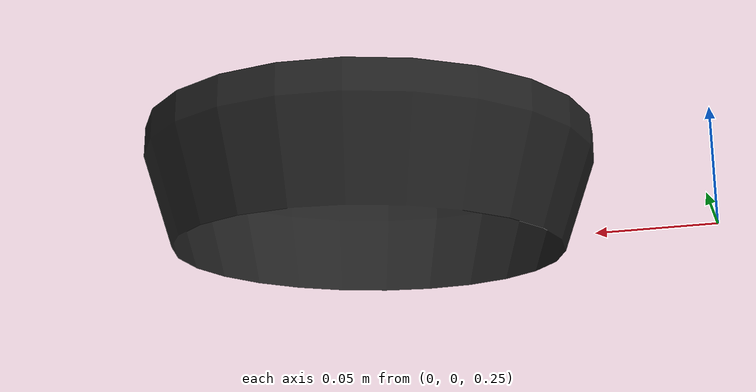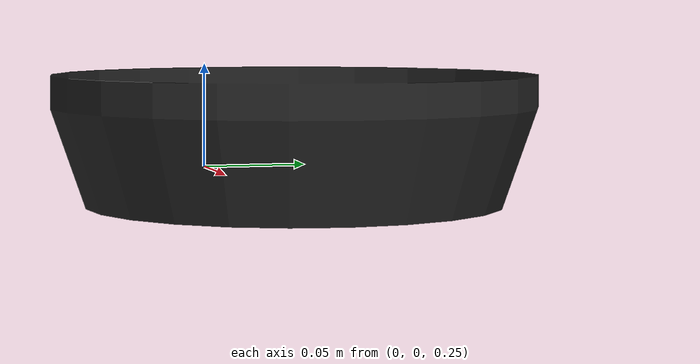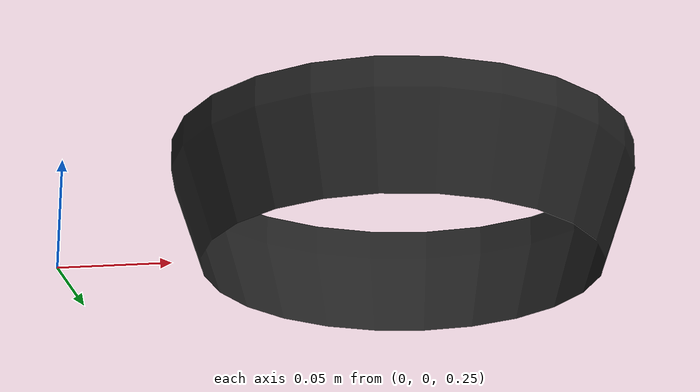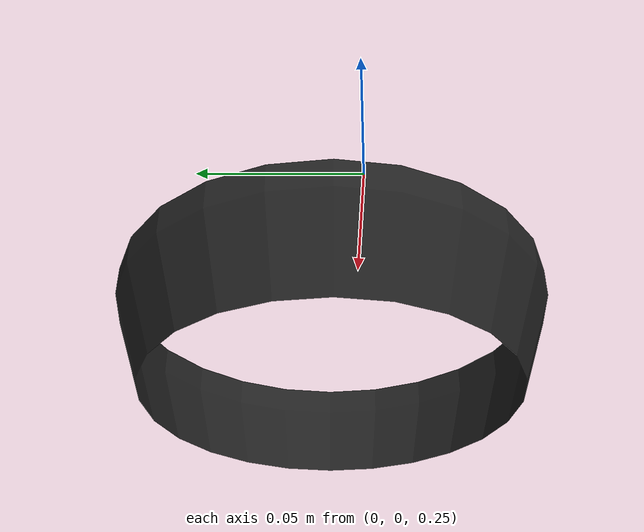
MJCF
<mujoco model="original-3">
  <default>
    <default class="visual">
      <geom group="2" type="mesh" contype="0" conaffinity="0"/>
    </default>
    <default class="collision">
      <geom group="3" type="mesh"/>
    </default>
  </default>
  <asset>
    <material name="material_0_0" specular="0.06666666666666667" shininess="0.03" rgba="0.13333333333333333 0.13333333333333333 0.13333333333333333 1"/>
    <mesh file="original-3.obj"/>
  </asset>
  <worldbody>
    <body name="original-3">
      <geom material="material_0_0" mesh="original-3" class="visual"/>
      <geom mesh="original-3" class="collision"/>
    </body>
  </worldbody>
</mujoco>
